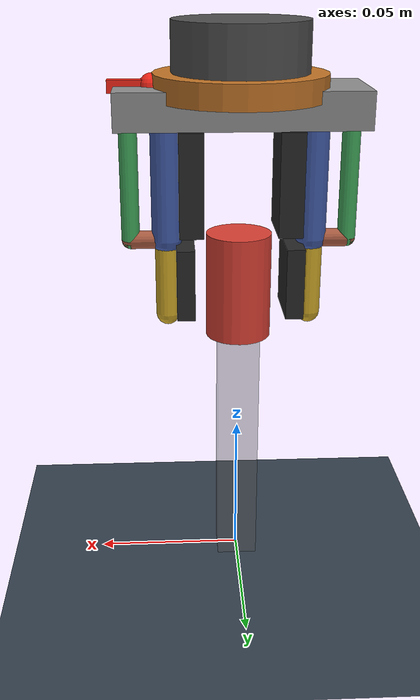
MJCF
<mujoco model="grasp_twist_scene">

  <include file="grasp_twist_gripper.xml"/>
  <compiler angle="radian"/>

  <option integrator="implicit" impratio="10" cone="elliptic"
          noslip_iterations="50" timestep="0.001"
          solver="Newton" iterations="200" tolerance="1e-10"/>

  <visual>
    <headlight diffuse="0.6 0.6 0.6" ambient="0.3 0.3 0.3" specular="0.2 0.2 0.2"/>
    <quality shadowsize="4096"/>
    <map znear="0.001" zfar="5"/>
  </visual>

  <statistic center="0 0 0.10" extent="0.4"/>

  <asset>
    <texture type="skybox" builtin="gradient" rgb1="0.3 0.5 0.7" rgb2="0.08 0.08 0.2"
             width="512" height="3072"/>
    <texture type="2d" name="groundplane" builtin="checker" mark="edge"
             rgb1="0.25 0.3 0.35" rgb2="0.15 0.2 0.25"
             markrgb="0.8 0.8 0.8" width="300" height="300"/>
    <material name="groundplane" texture="groundplane"
              texuniform="true" texrepeat="5 5" reflectance="0.2"/>
  </asset>

  <worldbody>
    <light name="top" pos="0 0 1.0" dir="0 0 -1"
           diffuse="0.8 0.8 0.8" specular="0.3 0.3 0.3" castshadow="true"/>
    <light name="front" pos="0.2 -0.6 0.5" dir="-0.2 0.6 -0.3"
           diffuse="0.5 0.5 0.5"/>

    <camera name="front" pos="0.12 -0.25 0.16"
            xyaxes="0.92 0.38 0 -0.1 0.25 0.96"/>
    <camera name="top_down" pos="0 0 0.35"
            xyaxes="1 0 0 0 1 0"/>
    <camera name="closeup" pos="0.04 -0.14 0.13"
            xyaxes="0.96 0.28 0 -0.06 0.22 0.97"/>

    <geom name="floor" size="0.5 0.5 0.01" type="plane" material="groundplane"/>

    <!-- Pedestal to hold object at grasp height -->
    <body name="pedestal" pos="0 0 0.043">
      <geom name="pedestal_geom" type="box" size="0.007 0.007 0.043"
            rgba="0.4 0.4 0.4 0.4" friction="0.8 0.005 0.001" condim="4"/>
    </body>

    <!-- Cylinder for grasping (on pedestal, center at ~z=0.104) -->
    <body name="cylinder_obj" pos="0 0 0.104">
      <freejoint name="cyl_free"/>
      <geom name="cyl_geom" type="cylinder" size="0.011 0.018"
            rgba="0.85 0.25 0.20 1" mass="0.025"
            friction="1.2 0.005 0.001" condim="4"/>
    </body>
  </worldbody>

</mujoco>

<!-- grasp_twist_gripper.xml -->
<mujoco model="grasp_and_twist_gripper">

  <compiler angle="radian" autolimits="true"/>

  <default>
    <default class="gripper">
      <joint damping="0.5" armature="0.005"/>
      <geom condim="4" friction="0.7 0.005 0.001"/>

      <default class="driver">
        <joint damping="0.8" armature="0.008"/>
        <geom type="capsule" size="0.005" rgba="0.25 0.35 0.65 1"/>
      </default>
      <default class="follower">
        <joint damping="0.4" armature="0.004"/>
        <geom type="capsule" size="0.003" rgba="0.25 0.65 0.35 1"/>
      </default>
      <default class="coupler">
        <joint damping="0.3" armature="0.003"/>
        <geom type="capsule" size="0.003" rgba="0.65 0.35 0.25 1"/>
      </default>
      <default class="distal">
        <joint stiffness="0.6" damping="0.25" armature="0.004"/>
        <geom type="capsule" size="0.004" rgba="0.80 0.65 0.15 1"/>
      </default>
      <default class="pad">
        <geom type="box" condim="4" friction="1.5 0.005 0.001"
              rgba="0.15 0.15 0.15 1" priority="1"
              solimp="0.95 0.99 0.001" solref="0.008 1"/>
      </default>
    </default>
  </default>

  <worldbody>
    <!-- Fixed ceiling mount -->
    <body name="mount" pos="0 0 0.18">
      <geom name="mount_viz" type="cylinder" size="0.022 0.010"
            rgba="0.3 0.3 0.3 1" mass="0.2"/>

      <!-- WRIST: Passive revolute about Z, stiff spring                -->
      <!-- THIS IS PASSIVE DOF #1 — rotates only when fingers stall    -->
      <body name="wrist_body" pos="0 0 -0.010">
        <inertial pos="0 0 -0.005" mass="0.06"
                  diaginertia="6e-6 6e-6 1e-5"/>
        <joint name="wrist_joint" type="hinge" axis="0 0 1"
               range="-6.28 6.28"
               stiffness="5.0" damping="1.5" armature="0.015"/>
        <!-- Wrist disc -->
        <geom name="wrist_disc" type="cylinder" size="0.028 0.004"
              rgba="0.75 0.45 0.15 1" mass="0.02"/>
        <!-- Direction indicator (red arrow) so you can SEE the twist -->
        <geom name="wrist_arrow" type="box" size="0.028 0.002 0.002"
              pos="0.014 0 0" rgba="0.95 0.15 0.10 1"/>
        <geom name="wrist_dot" type="sphere" size="0.004"
              pos="0.028 0 0" rgba="0.95 0.15 0.10 1"/>

        <!-- Gripper base (rides on wrist, rotates with it) -->
        <body name="base_mount" pos="0 0 -0.006">
          <geom name="base" type="box" size="0.040 0.015 0.006"
                rgba="0.55 0.55 0.55 1" mass="0.10"/>

          <!-- ====== RIGHT FINGER ====== -->
          <body name="right_driver" pos="0.024 0 -0.004" childclass="gripper">
            <inertial pos="0 0 -0.019" mass="0.012"
                      diaginertia="1e-6 1e-6 3e-7"/>
            <joint name="right_driver_joint" type="hinge"
                   axis="0 1 0" range="0 0.8" class="driver"/>
            <geom name="right_driver_link"
                  fromto="0 0 0  0 0 -0.040" class="driver"/>
            <geom name="right_prox_pad" class="pad"
                  pos="-0.008 0 -0.020" size="0.004 0.011 0.017"/>

            <!-- Coupler (kinematic only) -->
            <body name="right_coupler" pos="0 0 -0.040">
              <inertial pos="0.005 0 0" mass="0.005"
                        diaginertia="1.5e-7 1.5e-7 6e-8"/>
              <joint name="right_coupler_joint" type="hinge"
                     axis="0 -1 0" range="-1.2 1.2" class="coupler"/>
              <geom name="right_coupler_link"
                    fromto="0 0 0  0.012 0 0" class="coupler"/>
              <site name="right_coupler_end" pos="0.012 0 0" size="0.002"/>
            </body>

            <!-- DISTAL — passive DOF #2 -->
            <body name="right_distal" pos="0 0 -0.040">
              <inertial pos="0 0 -0.012" mass="0.008"
                        diaginertia="3e-7 3e-7 1e-7"/>
              <joint name="right_distal_joint" type="hinge"
                     axis="0 1 0" range="-0.5 1.2" class="distal"/>
              <geom name="right_distal_link"
                    fromto="0 0 0  0 0 -0.026" class="distal"/>
              <geom name="right_dist_pad" class="pad"
                    pos="-0.006 0 -0.013" size="0.003 0.011 0.012"/>
            </body>
          </body>

          <!-- Right follower -->
          <body name="right_follower" pos="0.036 0 -0.004" childclass="gripper">
            <inertial pos="0 0 -0.020" mass="0.006"
                      diaginertia="4e-7 4e-7 1.5e-7"/>
            <joint name="right_follower_joint" type="hinge"
                   axis="0 1 0" range="-0.2 0.8" class="follower"/>
            <geom name="right_follower_link"
                  fromto="0 0 0  0 0 -0.040" class="follower"/>
            <body name="right_follower_tip" pos="0 0 -0.040">
              <site name="right_follower_end" pos="0 0 0" size="0.002"/>
            </body>
          </body>

          <!-- ====== LEFT FINGER ====== -->
          <body name="left_driver" pos="-0.024 0 -0.004" childclass="gripper">
            <inertial pos="0 0 -0.019" mass="0.012"
                      diaginertia="1e-6 1e-6 3e-7"/>
            <joint name="left_driver_joint" type="hinge"
                   axis="0 -1 0" range="0 0.8" class="driver"/>
            <geom name="left_driver_link"
                  fromto="0 0 0  0 0 -0.040" class="driver"/>
            <geom name="left_prox_pad" class="pad"
                  pos="0.008 0 -0.020" size="0.004 0.011 0.017"/>

            <body name="left_coupler" pos="0 0 -0.040">
              <inertial pos="-0.005 0 0" mass="0.005"
                        diaginertia="1.5e-7 1.5e-7 6e-8"/>
              <joint name="left_coupler_joint" type="hinge"
                     axis="0 1 0" range="-1.2 1.2" class="coupler"/>
              <geom name="left_coupler_link"
                    fromto="0 0 0  -0.012 0 0" class="coupler"/>
              <site name="left_coupler_end" pos="-0.012 0 0" size="0.002"/>
            </body>

            <!-- DISTAL — passive DOF #3 -->
            <body name="left_distal" pos="0 0 -0.040">
              <inertial pos="0 0 -0.012" mass="0.008"
                        diaginertia="3e-7 3e-7 1e-7"/>
              <joint name="left_distal_joint" type="hinge"
                     axis="0 -1 0" range="-0.5 1.2" class="distal"/>
              <geom name="left_distal_link"
                    fromto="0 0 0  0 0 -0.026" class="distal"/>
              <geom name="left_dist_pad" class="pad"
                    pos="0.006 0 -0.013" size="0.003 0.011 0.012"/>
            </body>
          </body>

          <!-- Left follower -->
          <body name="left_follower" pos="-0.036 0 -0.004" childclass="gripper">
            <inertial pos="0 0 -0.020" mass="0.006"
                      diaginertia="4e-7 4e-7 1.5e-7"/>
            <joint name="left_follower_joint" type="hinge"
                   axis="0 -1 0" range="-0.2 0.8" class="follower"/>
            <geom name="left_follower_link"
                  fromto="0 0 0  0 0 -0.040" class="follower"/>
            <body name="left_follower_tip" pos="0 0 -0.040">
              <site name="left_follower_end" pos="0 0 0" size="0.002"/>
            </body>
          </body>

        </body> <!-- base_mount -->
      </body> <!-- wrist_body -->
    </body> <!-- mount -->
  </worldbody>

  <!-- Four-bar closures (rigid) -->
  <equality>
    <connect name="right_four_bar"
             body1="right_coupler" body2="right_follower_tip"
             anchor="0.012 0 0" solref="0.002 1"/>
    <connect name="left_four_bar"
             body1="left_coupler" body2="left_follower_tip"
             anchor="-0.012 0 0" solref="0.002 1"/>
  </equality>

  <contact>
    <exclude body1="mount" body2="wrist_body"/>
    <exclude body1="wrist_body" body2="base_mount"/>
    <exclude body1="base_mount" body2="right_driver"/>
    <exclude body1="base_mount" body2="right_follower"/>
    <exclude body1="base_mount" body2="left_driver"/>
    <exclude body1="base_mount" body2="left_follower"/>
    <exclude body1="right_driver" body2="right_follower"/>
    <exclude body1="right_coupler" body2="right_follower"/>
    <exclude body1="right_coupler" body2="right_follower_tip"/>
    <exclude body1="right_distal" body2="right_coupler"/>
    <exclude body1="left_driver" body2="left_follower"/>
    <exclude body1="left_coupler" body2="left_follower"/>
    <exclude body1="left_coupler" body2="left_follower_tip"/>
    <exclude body1="left_distal" body2="left_coupler"/>
    <exclude body1="right_driver" body2="left_driver"/>
    <exclude body1="right_distal" body2="left_distal"/>
  </contact>

  <!-- THE DIFFERENTIAL: Single compound tendon                           -->
  <!-- master = 1.0*right_driver + 1.0*left_driver + 0.25*wrist          -->
  <!-- HOW IT WORKS:                                                      -->
  <!--   Actuator commands tendon length.                                 -->
  <!--   Fingers have NO spring → they move freely (low resistance).      -->
  <!--   Wrist has spring k=5.0 → it resists (high resistance).           -->
  <!--   ctrl 0→0.8: Fingers absorb all motion. Wrist stays at 0.        -->
  <!--     (tendon length = finger_angles, wrist contribution ≈ 0)        -->
  <!--   ctrl 0.8→2.0: Fingers at joint limit (0.8 rad) OR stalled       -->
  <!--     on object. Can't absorb more. Excess goes to wrist.            -->
  <!--     0.25*wrist = ctrl - 1.6 → wrist = 4*(ctrl - 1.6)             -->
  <!--     At ctrl=2.0: wrist = 4*0.4 = 1.6 rad ≈ 92 degrees            -->
  <!-- ONE ACTUATOR. TWO USEFUL MOTIONS. ZERO SENSORS.                    -->
  <tendon>
    <fixed name="master_tendon">
      <joint joint="right_driver_joint" coef="1.0"/>
      <joint joint="left_driver_joint" coef="1.0"/>
      <joint joint="wrist_joint" coef="0.25"/>
    </fixed>
  </tendon>

  <!-- SINGLE ACTUATOR — position-controlled on the compound tendon -->
  <actuator>
    <position name="master_actuator" tendon="master_tendon"
              ctrlrange="0 2.5" kp="80" forcerange="-150 150"/>
  </actuator>

  <!-- Sensors for monitoring all DOFs -->
  <sensor>
    <jointpos   name="wrist_angle"       joint="wrist_joint"/>
    <jointpos   name="right_driver_pos"  joint="right_driver_joint"/>
    <jointpos   name="left_driver_pos"   joint="left_driver_joint"/>
    <jointpos   name="right_distal_pos"  joint="right_distal_joint"/>
    <jointpos   name="left_distal_pos"   joint="left_distal_joint"/>
    <tendonpos  name="master_tendon_pos" tendon="master_tendon"/>
    <actuatorfrc name="master_force"     actuator="master_actuator"/>
  </sensor>

  <!-- Keyframes for interactive testing -->
  <keyframe>
    <key name="open"         ctrl="0"/>
    <key name="fingers_only" ctrl="0.8"/>
    <key name="grasp_twist"  ctrl="2.0"/>
    <key name="full_twist"   ctrl="2.5"/>
  </keyframe>

</mujoco>
